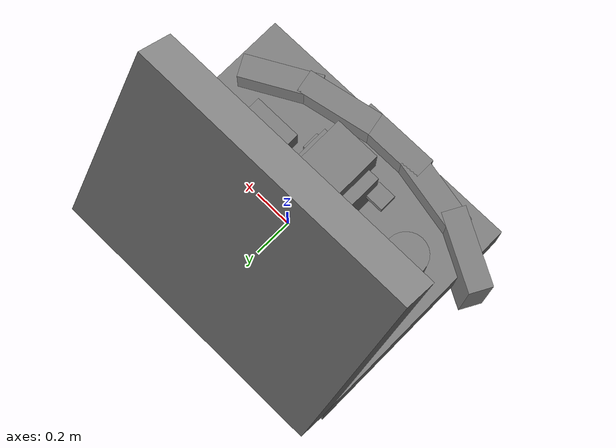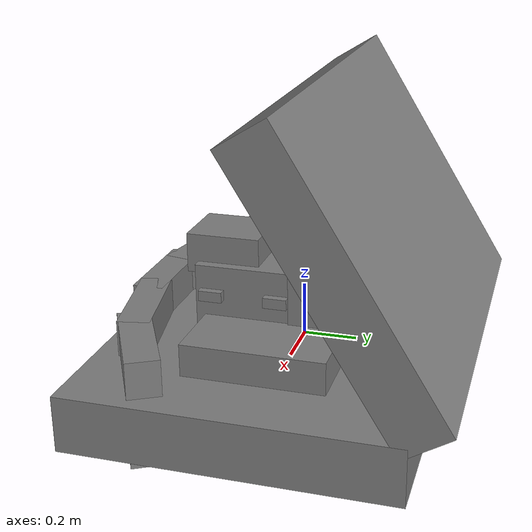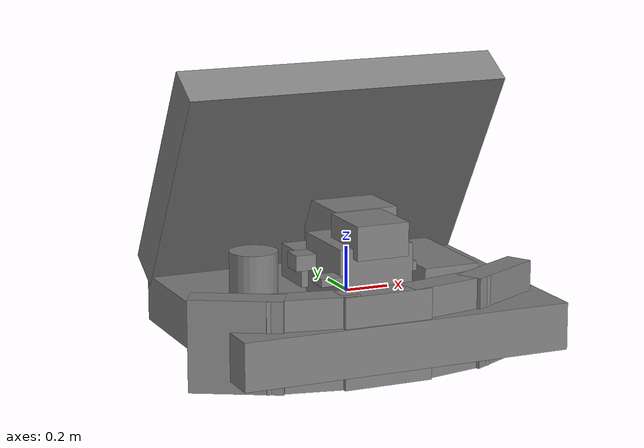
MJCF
<mujoco model="static_env">
  <compiler angle="radian" />
  <default/>
  <worldbody>
    <body name="car1">
      <geom type="box" name="body" pos="-0.03 -0.2 0.14" size="0.17 0.185 0.15"/>
      <geom type="box" name="lift_tab1" pos="0.12 -0.07 0.18" size="0.05 0.045 0.02"/>
      <geom type="box" name="lift_tab2" pos="0.12 -0.32 0.18" size="0.05 0.045 0.02"/>
      <geom type="box" name="lift_tab3" pos="-0.245 -0.078 0.18" size="0.05 0.05 0.035"/>
      <geom type="box" name="lift_tab4" pos="-0.245 -0.36 0.16" size="0.05 0.045 0.0175"/>
      <geom type="box" name="top" pos="-0.02 -0.29 0.32" size="0.12 0.14 0.075"/>
      <geom type="box" name="pallet" pos="0 -0.07 -0.08" size="0.75 0.6 0.105"/>
      <geom type="box" name="hood" pos="0 0.3 0.5" quat="0.9624 0.2715 0 0" size="0.75 0.1 0.55"/>
      <geom type="cylinder" name="cylinder" pos="-0.53 -0.22 0.15" size="0.105 0.135"/>
      <geom type="box" name="box1" pos="-0.13 0.08 0.12" size="0.1 0.115 0.075"/>
      <geom type="box" name="box2" pos="0.1 0.18 0.2" size="0.15 0.175 0.16"/>
      <geom type="box" name="box3" pos="0.37 -0.05 0.07" size="0.13 0.26 0.075"/>
      <geom type="box" name="bumper1" pos="-0.1 -0.6 -0.04" size="0.2 0.06 0.2"/>
      <geom type="box" name="bumper2" pos="-0.41 -0.56 -0.04" quat="0.995 0 0 -0.099" size="0.2 0.06 0.2"/>
      <geom type="box" name="bumper3" pos="-0.7 -0.46 -0.04" quat="0.9689 0 0 -0.2474" size="0.2 0.06 0.2"/>
      <geom type="box" name="bumper4" pos="0.21 -0.56 -0.04" quat="0.995 0 0 0.099" size="0.2 0.06 0.2"/>
      <geom type="box" name="bumper5" pos="0.5 -0.46 -0.04" quat="0.9689 0 0 0.2474" size="0.2 0.06 0.2"/>
    </body>
  </worldbody>
</mujoco>
